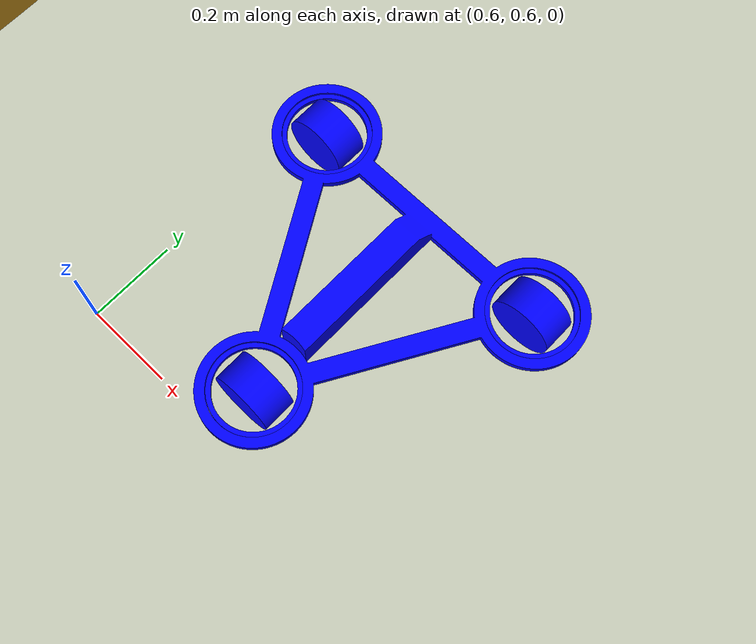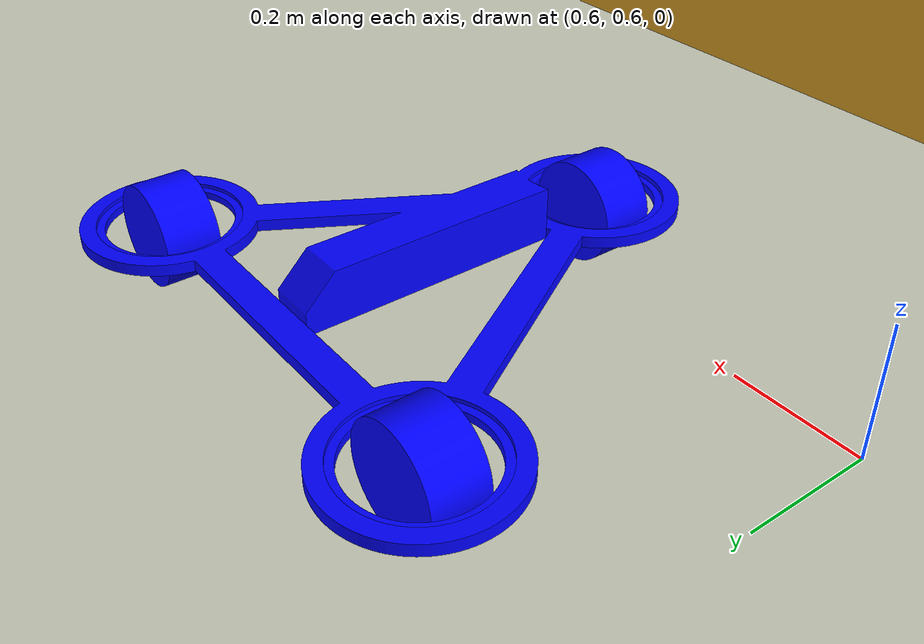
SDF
<?xml version="1.0" ?>

<sdf version="1.6">
    <world name="mppi_brushup">

    <gui fullscreen="0">

      <!-- 3D scene -->
      <plugin filename="MinimalScene" name="3D View">
        <ignition-gui>
          <title>3D View</title>
          <property type="bool" key="showTitleBar">false</property>
          <property type="string" key="state">docked</property>
        </ignition-gui>

        <engine>ogre2</engine>
        <scene>scene</scene>
        <ambient_light>0.4 0.4 0.4</ambient_light>
        <background_color>0.8 0.8 0.8</background_color>
        <camera_pose>-6 0 6 0 0.5 0</camera_pose>
      </plugin>

      <!-- Plugins that add functionality to the scene -->
      <plugin filename="EntityContextMenuPlugin" name="Entity context menu">
        <ignition-gui>
          <property key="state" type="string">floating</property>
          <property key="width" type="double">5</property>
          <property key="height" type="double">5</property>
          <property key="showTitleBar" type="bool">false</property>
        </ignition-gui>
      </plugin>
      <plugin filename="GzSceneManager" name="Scene Manager">
        <ignition-gui>
          <property key="resizable" type="bool">false</property>
          <property key="width" type="double">5</property>
          <property key="height" type="double">5</property>
          <property key="state" type="string">floating</property>
          <property key="showTitleBar" type="bool">false</property>
        </ignition-gui>
      </plugin>
      <plugin filename="InteractiveViewControl" name="Interactive view control">
        <ignition-gui>
          <property key="resizable" type="bool">false</property>
          <property key="width" type="double">5</property>
          <property key="height" type="double">5</property>
          <property key="state" type="string">floating</property>
          <property key="showTitleBar" type="bool">false</property>
        </ignition-gui>
      </plugin>
      <plugin filename="CameraTracking" name="Camera Tracking">
        <ignition-gui>
          <property key="resizable" type="bool">false</property>
          <property key="width" type="double">5</property>
          <property key="height" type="double">5</property>
          <property key="state" type="string">floating</property>
          <property key="showTitleBar" type="bool">false</property>
        </ignition-gui>
      </plugin>
      <!-- World control -->
      <plugin filename="WorldControl" name="World control">
        <ignition-gui>
          <title>World control</title>
          <property type="bool" key="showTitleBar">false</property>
          <property type="bool" key="resizable">false</property>
          <property type="double" key="height">72</property>
          <property type="double" key="width">121</property>
          <property type="double" key="z">1</property>

          <property type="string" key="state">floating</property>
          <anchors target="3D View">
            <line own="left" target="left"/>
            <line own="bottom" target="bottom"/>
          </anchors>
        </ignition-gui>

        <play_pause>true</play_pause>
        <step>true</step>
        <start_paused>true</start_paused>
        <use_event>true</use_event>

      </plugin>

      <!-- World statistics -->
      <plugin filename="WorldStats" name="World stats">
        <ignition-gui>
          <title>World stats</title>
          <property type="bool" key="showTitleBar">false</property>
          <property type="bool" key="resizable">false</property>
          <property type="double" key="height">110</property>
          <property type="double" key="width">290</property>
          <property type="double" key="z">1</property>

          <property type="string" key="state">floating</property>
          <anchors target="3D View">
            <line own="right" target="right"/>
            <line own="bottom" target="bottom"/>
          </anchors>
        </ignition-gui>

        <sim_time>true</sim_time>
        <real_time>true</real_time>
        <real_time_factor>true</real_time_factor>
        <iterations>true</iterations>
      </plugin>

      <plugin filename="VisualizeLidar" name="Visualize Lidar">
      </plugin>

      <!-- Inspector -->
      <plugin filename="ComponentInspector" name="Component inspector">
        <ignition-gui>
          <property type="string" key="state">docked</property>
        </ignition-gui>
      </plugin>

      <!-- Entity tree -->
      <plugin filename="EntityTree" name="Entity tree">
        <ignition-gui>
          <property type="string" key="state">docked</property>
        </ignition-gui>
      </plugin>
    </gui>

    <physics name="1ms" type="ignored">
        <max_step_size>0.001</max_step_size>
        <real_time_factor>1.0</real_time_factor>
    </physics>
    <plugin
        filename="libignition-gazebo-physics-system.so"
        name="ignition::gazebo::systems::Physics">
    </plugin>
    <plugin
        filename="libignition-gazebo-sensors-system.so"
        name="ignition::gazebo::systems::Sensors">
    <render_engine>ogre2</render_engine>
    </plugin>
    <plugin
        filename="libignition-gazebo-scene-broadcaster-system.so"
        name="ignition::gazebo::systems::SceneBroadcaster">
    </plugin>

    <light name="sun" type="directional">
      <cast_shadows>true</cast_shadows>
      <pose>0 0 10 0 0 0</pose>
      <diffuse>0.8 0.8 0.8 1</diffuse>
      <specular>0.2 0.2 0.2 1</specular>
      <attenuation>
        <range>1000</range>
        <constant>0.9</constant>
        <linear>0.01</linear>
        <quadratic>0.001</quadratic>
      </attenuation>
      <direction>-0.5 0.1 -0.9</direction>
    </light>

    <model name="field">
    <static>true</static>
        <link name="link">
        <collision name="collision">
            <geometry>
            <mesh>
                <scale>1 1 1</scale>
                <uri>package://inrof_sim/worlds/meshs/nhk_field.stl</uri>
            </mesh>
            </geometry>
            <surface>
            <friction>
                <ode>
                <mu>1.2</mu>
                <mu2>1.2</mu2>
                </ode>
            </friction>
            </surface>
        </collision>

        <visual name="visual">
            <geometry>
            <mesh>
                <scale>1 1 1</scale>
                <uri>package://inrof_sim/worlds/meshs/nhk_field.dae</uri>
            </mesh>
            </geometry>
        </visual>
        </link>
    </model>

    <include>
        <uri>package://inrof_sim/models/swerve</uri>
        <pose>1 1 0.2 0 0 0</pose>
    </include>

    </world>
</sdf>

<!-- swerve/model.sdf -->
<sdf version="1.6">
    <model name="swerve">
        <link name="base_link">
        <pose> 0 0 0 0 0 0</pose>
        <inertial>
            <inertia>
                <ixx>0.1164</ixx>
                <iyy>0.1080</iyy>
                <izz>0.2243</izz>
                <ixy>0</ixy>
                <ixz>0</ixz>
                <iyz>0</iyz>
            </inertia>
            <mass>3.911</mass>
        </inertial>

        <collision name="collision">
        <geometry>
        <mesh>
            <scale>1 1 1</scale>
            <uri>package://inrof_sim/models/swerve/meshs/swerve_base.stl</uri>
        </mesh>
        </geometry>
        <surface>
            <friction>
                <ode>
                    <mu>0.3</mu>
                    <mu2>0.3</mu2>
                </ode>
            </friction>
        </surface>
        </collision>

        <visual name="visual">
        <geometry>
        <mesh>
            <scale>1 1 1</scale>
            <uri>package://inrof_sim/models/swerve/meshs/swerve_base.stl</uri>
        </mesh>
        </geometry>
        <material>
            <ambient>0.0 0.0 1.0 1.0</ambient>   <diffuse>0.0 0.0 1.0 1.0</diffuse>   <specular>0.1 0.1 0.1 1.0</specular> <emissive>0.0 0.0 0.0 0.0</emissive>
        </material>
        </visual>
        </link>

        <link name="wheel0">
        <pose>0.27 0.155885 0 0 0 0</pose>
        <inertial>
            <inertia>
                <ixx>0.003907</ixx>
                <iyy>0.005691</iyy>
                <izz>0.003907</izz>
                <ixy>0</ixy>
                <ixz>0</ixz>
                <iyz>0</iyz>
            </inertia>
            <mass>2.599764</mass>
        </inertial>

        <collision name="collision">
        <geometry>
        <mesh>
            <scale>1 1 1</scale>
            <uri>package://inrof_sim/models/swerve/meshs/swerve_wheel.stl</uri>
        </mesh>
        </geometry>
        <surface>
            <friction>
                <ode>
                    <mu>0.3</mu>
                    <mu2>0.3</mu2>
                </ode>
            </friction>
        </surface>
        </collision>

        <visual name="visual">
        <geometry>
        <mesh>
            <scale>1 1 1</scale>
            <uri>package://inrof_sim/models/swerve/meshs/swerve_wheel.stl</uri>
        </mesh>
        </geometry>
        <material>
            <ambient>0.0 0.0 1.0 1.0</ambient>   <diffuse>0.0 0.0 1.0 1.0</diffuse>   <specular>0.1 0.1 0.1 1.0</specular> <emissive>0.0 0.0 0.0 0.0</emissive>
        </material>
        </visual>
        </link>

        <link name="wheel1">
        <pose>-0.27 0.155885 0 0 0 0</pose>
        <inertial>
            <inertia>
                <ixx>0.003907</ixx>
                <iyy>0.005691</iyy>
                <izz>0.003907</izz>
                <ixy>0</ixy>
                <ixz>0</ixz>
                <iyz>0</iyz>
            </inertia>
            <mass>2.599764</mass>
        </inertial>

        <collision name="collision">
        <geometry>
        <mesh>
            <scale>1 1 1</scale>
            <uri>package://inrof_sim/models/swerve/meshs/swerve_wheel.stl</uri>
        </mesh>
        </geometry>
        <surface>
            <friction>
                <ode>
                    <mu>1.07</mu>
                    <mu2>1.07</mu2>
                </ode>
            </friction>
        </surface>
        </collision>

        <visual name="visual">
        <geometry>
        <mesh>
            <scale>1 1 1</scale>
            <uri>package://inrof_sim/models/swerve/meshs/swerve_wheel.stl</uri>
        </mesh>
        </geometry>
        <material>
            <ambient>0.0 0.0 1.0 1.0</ambient>   <diffuse>0.0 0.0 1.0 1.0</diffuse>   <specular>0.1 0.1 0.1 1.0</specular> <emissive>0.0 0.0 0.0 0.0</emissive>
        </material>
        </visual>
        </link>

        <link name="wheel2">
        <pose>0 -0.311 0 0 0 0</pose>
        <inertial>
            <inertia>
                <ixx>0.003907</ixx>
                <iyy>0.005691</iyy>
                <izz>0.003907</izz>
                <ixy>0</ixy>
                <ixz>0</ixz>
                <iyz>0</iyz>
            </inertia>
            <mass>2.599764</mass>
        </inertial>

        <collision name="collision">
        <geometry>
        <mesh>
            <scale>1 1 1</scale>
            <uri>package://inrof_sim/models/swerve/meshs/swerve_wheel.stl</uri>
        </mesh>
        </geometry>
        <surface>
            <friction>
                <ode>
                    <mu>1.07</mu>
                    <mu2>1.07</mu2>
                </ode>
            </friction>
        </surface>
        </collision>

        <visual name="visual">
        <geometry>
        <mesh>
            <scale>1 1 1</scale>
            <uri>package://inrof_sim/models/swerve/meshs/swerve_wheel.stl</uri>
        </mesh>
        </geometry>
        <material>
            <ambient>0.0 0.0 1.0 1.0</ambient>   <diffuse>0.0 0.0 1.0 1.0</diffuse>   <specular>0.1 0.1 0.1 1.0</specular> <emissive>0.0 0.0 0.0 0.0</emissive>
        </material>
        </visual>
        </link>

        <link name="stare0">
        <pose>0.27 0.155885 0 0 0 0</pose>
        <inertial>
            <inertia>
                <ixx>1</ixx>
                <ixy>0</ixy>
                <ixz>0</ixz>
                <iyy>1</iyy>
                <iyz>0</iyz>
                <izz>1</izz>
            </inertia>
            <mass>1.0</mass>
        </inertial>

        <collision name="collision">
        <geometry>
        <mesh>
            <scale>1 1 1</scale>
            <uri>package://inrof_sim/models/swerve/meshs/swerve_stare.stl</uri>
        </mesh>
        </geometry>
        <surface>
            <friction>
                <ode>
                    <mu>0.3</mu>
                    <mu2>0.3</mu2>
                </ode>
            </friction>
        </surface>
        </collision>

        <visual name="visual">
        <geometry>
        <mesh>
            <scale>1 1 1</scale>
            <uri>package://inrof_sim/models/swerve/meshs/swerve_stare.stl</uri>
        </mesh>
        </geometry>
        <material>
            <ambient>0.0 0.0 1.0 1.0</ambient>   <diffuse>0.0 0.0 1.0 1.0</diffuse>   <specular>0.1 0.1 0.1 1.0</specular> <emissive>0.0 0.0 0.0 0.0</emissive>
        </material>
        </visual>
        </link>

        <link name="stare1">
        <pose>-0.27 0.155885 0 0 0 0</pose>
        <inertial>
            <inertia>
                <ixx>1</ixx>
                <ixy>0</ixy>
                <ixz>0</ixz>
                <iyy>1</iyy>
                <iyz>0</iyz>
                <izz>1</izz>
            </inertia>
            <mass>1.0</mass>
        </inertial>

        <collision name="collision">
        <geometry>
        <mesh>
            <scale>1 1 1</scale>
            <uri>package://inrof_sim/models/swerve/meshs/swerve_stare.stl</uri>
        </mesh>
        </geometry>
        <surface>
            <friction>
                <ode>
                    <mu>0.3</mu>
                    <mu2>0.3</mu2>
                </ode>
            </friction>
        </surface>
        </collision>

        <visual name="visual">
        <geometry>
        <mesh>
            <scale>1 1 1</scale>
            <uri>package://inrof_sim/models/swerve/meshs/swerve_stare.stl</uri>
        </mesh>
        </geometry>
        <material>
            <ambient>0.0 0.0 1.0 1.0</ambient>   <diffuse>0.0 0.0 1.0 1.0</diffuse>   <specular>0.1 0.1 0.1 1.0</specular> <emissive>0.0 0.0 0.0 0.0</emissive>
        </material>
        </visual>
        </link>

        <link name="stare2">
        <pose>0 -0.311 0 0 0 0</pose>
        <inertial>
            <inertia>
                <ixx>1</ixx>
                <ixy>0</ixy>
                <ixz>0</ixz>
                <iyy>1</iyy>
                <iyz>0</iyz>
                <izz>1</izz>
            </inertia>
            <mass>1.0</mass>
        </inertial>

        <collision name="collision">
        <geometry>
        <mesh>
            <scale>1 1 1</scale>
            <uri>package://inrof_sim/models/swerve/meshs/swerve_stare.stl</uri>
        </mesh>
        </geometry>
        <surface>
            <friction>
                <ode>
                    <mu>0.3</mu>
                    <mu2>0.3</mu2>
                </ode>
            </friction>
        </surface>
        </collision>

        <visual name="visual">
        <geometry>
        <mesh>
            <scale>1 1 1</scale>
            <uri>package://inrof_sim/models/swerve/meshs/swerve_stare.stl</uri>
        </mesh>
        </geometry>
        <material>
            <ambient>0.0 0.0 1.0 1.0</ambient>   <diffuse>0.0 0.0 1.0 1.0</diffuse>   <specular>0.1 0.1 0.1 1.0</specular> <emissive>0.0 0.0 0.0 0.0</emissive>
        </material>
        </visual>
        </link>

        <joint name='stare0_joint' type='revolute'>
        <parent>base_link</parent>
        <child>stare0</child>
        <axis>
            <xyz>0 0 1</xyz>
        </axis>
        </joint>

        <joint name='stare1_joint' type='revolute'>
        <parent>base_link</parent>
        <child>stare1</child>
        <axis>
            <xyz>0 0 1</xyz>
        </axis>
        </joint>

        <joint name='stare2_joint' type='revolute'>
        <parent>base_link</parent>
        <child>stare2</child>
        <axis>
            <xyz>0 0 1</xyz>
        </axis>
        </joint>

        <joint name='wheel0_joint' type='revolute'>
        <parent>stare0</parent>
        <child>wheel0</child>
        <axis>
            <xyz>0 1 0</xyz>
        </axis>
        </joint>

        <joint name='wheel1_joint' type='revolute'>
        <parent>stare1</parent>
        <child>wheel1</child>
        <axis>
            <xyz>0 1 0</xyz>
        </axis>
        </joint>

        <joint name='wheel2_joint' type='revolute'>
        <parent>stare2</parent>
        <child>wheel2</child>
        <axis>
            <xyz>0 1 0</xyz>
        </axis>
        </joint>

        <plugin name="ignition::gazebo::systems::JointPositionController" filename="libignition-gazebo6-joint-position-controller-system.so">
            <joint_name>stare0_joint</joint_name>
            <topic>/swerve/swerve_pos0</topic>
            <p_gain>10</p_gain>
            <d_gain>5</d_gain>
        </plugin>
        <plugin name="ignition::gazebo::systems::JointPositionController" filename="libignition-gazebo6-joint-position-controller-system.so">
            <joint_name>stare1_joint</joint_name>
            <topic>/swerve/swerve_pos1</topic>
            <p_gain>10</p_gain>
            <d_gain>5</d_gain>
        </plugin>
        <plugin name="ignition::gazebo::systems::JointPositionController" filename="libignition-gazebo6-joint-position-controller-system.so">
            <joint_name>stare2_joint</joint_name>
            <topic>/swerve/swerve_pos2</topic>
            <p_gain>10</p_gain>
            <d_gain>5</d_gain>
        </plugin>

        <plugin name="ignition::gazebo::systems::JointController" filename="libignition-gazebo6-joint-controller-system.so">
            <joint_name>wheel0_joint</joint_name>
            <topic>/swerve/wheel_vel0</topic>
            <use_force_commands>true</use_force_commands>
            <p_gain>0.2</p_gain>
            <i_gain>0.01</i_gain>
        </plugin>
        <plugin name="ignition::gazebo::systems::JointController" filename="libignition-gazebo6-joint-controller-system.so">
            <joint_name>wheel1_joint</joint_name>
            <topic>/swerve/wheel_vel1</topic>
            <use_force_commands>true</use_force_commands>
            <p_gain>0.2</p_gain>
            <i_gain>0.01</i_gain>
        </plugin>
        <plugin name="ignition::gazebo::systems::JointController" filename="libignition-gazebo6-joint-controller-system.so">
            <joint_name>wheel2_joint</joint_name>
            <topic>/swerve/wheel_vel2</topic>
            <use_force_commands>true</use_force_commands>
            <p_gain>0.2</p_gain>
            <i_gain>0.01</i_gain>
        </plugin>

    </model>
</sdf>
